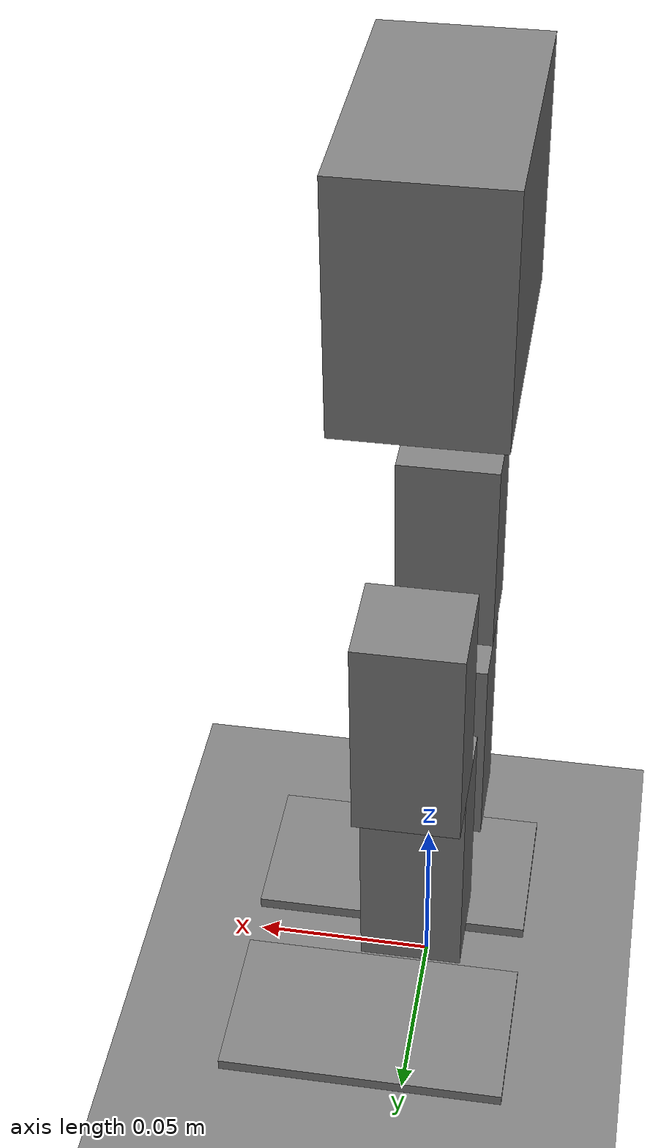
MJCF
<mujoco model="cadex-assembly">
  <compiler angle="radian" autolimits="false"/>

  <option integrator="implicitfast">
    <flag island="disable"/>
  </option>

  <size nkey="1"/>

  <worldbody>
    <body name="c_floor">
      <inertial pos="0 0 -0.002" quat="0.5 0.5 -0.5 0.5" mass="0.768" diaginertia="0.02048 0.010241 0.010241"/>
      <geom name="c_floor/collision0" size="0.2 0.2 0.05" type="plane" conaffinity="2147483647"/>
    </body>
    <body name="c_torso" pos="0 0 0.241">
      <inertial pos="0.00132326 4.52762e-06 0.00225201" quat="0.999574 0.000435019 -0.0291813 -3.19179e-05" mass="0.1356" diaginertia="0.000153369 0.000112191 7.39475e-05"/>
      <joint name="c_torso/free" type="free"/>
      <geom name="c_torso/collision0" size="0.02 0.036 0.031" type="box" conaffinity="2147483647"/>
      <body name="c_hip_l" pos="0 0.03 -0.066">
        <inertial pos="-0.00760718 0.00563305 0.0101238" quat="0.935924 0.0135927 -0.163726 0.311536" mass="0.0148157" diaginertia="2.82886e-06 2.64849e-06 1.44315e-06"/>
        <joint name="hip_roll_l" pos="0 0 0.015" axis="1 0 0" limited="true" range="-0.436332 0.436332" armature="2.5e-05" damping="0.0171887" frictionloss="0.0015"/>
        <body name="c_thigh_l" pos="0 0 -0.044">
          <inertial pos="-0.00284905 -0.00270625 0.013575" quat="0.995831 0.0165299 -0.036409 -0.0819878" mass="0.0276493" diaginertia="1.43823e-05 1.22604e-05 5.15626e-06"/>
          <joint name="hip_pitch_l" pos="0 0 0.029" axis="0 1 0" limited="true" range="-0.959931 0.698132" armature="2.5e-05" damping="0.0171887" frictionloss="0.0015"/>
          <geom name="c_thigh_l/collision0" size="0.0135 0.01225 0.029" pos="0 0.00575 0" type="box" conaffinity="2147483647"/>
          <body name="c_shin_l" pos="0 0 -0.06">
            <inertial pos="-0.00287537 0.0023632 0.013813" quat="0.99647 -0.0187264 -0.0320475 0.0752953" mass="0.0293278" diaginertia="1.65561e-05 1.43003e-05 5.47087e-06"/>
            <joint name="knee_l" pos="0 0 0.031" axis="0 1 0" limited="true" range="-0.0872665 1.65806" armature="2.5e-05" damping="0.0171887" frictionloss="0.0015"/>
            <geom name="c_shin_l/collision0" size="0.0135 0.01225 0.031" pos="0 -0.00575 0" type="box" conaffinity="2147483647"/>
            <body name="c_ankle_l" pos="0 0 -0.043">
              <inertial pos="-0.00351083 -0.00816112 0.0094974" quat="0.0507613 0.713518 0.562748 0.414283" mass="0.0139252" diaginertia="2.22528e-06 2.15682e-06 1.25039e-06"/>
              <joint name="ankle_pitch_l" pos="0 0 0.012" axis="0 1 0" limited="true" range="-0.698132 0.698132" armature="2.5e-05" damping="0.0171887" frictionloss="0.0015"/>
              <body name="c_foot_l" pos="0.012 0 -0.02">
                <inertial pos="-0.0106153 0.0023885 -0.000489322" quat="0.000715118 0.759676 -0.0811428 0.645219" mass="0.0296388" diaginertia="1.61379e-05 1.38871e-05 4.57778e-06"/>
                <joint name="ankle_roll_l" pos="-0.012 0 0.008" axis="1 0 0" limited="true" range="-0.436332 0.436332" armature="2.5e-05" damping="0.0171887" frictionloss="0.0015"/>
                <geom name="c_foot_l/collision0" size="0.04 0.022 0.00175" pos="0 0 -0.00625" type="box" conaffinity="2147483647" friction="1.2"/>
              </body>
            </body>
          </body>
        </body>
      </body>
      <body name="c_hip_r" pos="0 -0.03 -0.066">
        <inertial pos="-0.00760718 -0.00563305 0.0101238" quat="0.935924 -0.0135927 -0.163726 -0.311536" mass="0.0148157" diaginertia="2.82886e-06 2.64849e-06 1.44315e-06"/>
        <joint name="hip_roll_r" pos="0 0 0.015" axis="1 0 0" limited="true" range="-0.436332 0.436332" armature="2.5e-05" damping="0.0171887" frictionloss="0.0015"/>
        <body name="c_thigh_r" pos="0 0 -0.044">
          <inertial pos="-0.00284905 0.00270625 0.013575" quat="0.995831 -0.0165299 -0.036409 0.0819878" mass="0.0276493" diaginertia="1.43823e-05 1.22604e-05 5.15626e-06"/>
          <joint name="hip_pitch_r" pos="0 0 0.029" axis="0 1 0" limited="true" range="-0.959931 0.698132" armature="2.5e-05" damping="0.0171887" frictionloss="0.0015"/>
          <geom name="c_thigh_r/collision0" size="0.0135 0.01225 0.029" pos="0 -0.00575 0" type="box" conaffinity="2147483647"/>
          <body name="c_shin_r" pos="0 0 -0.06">
            <inertial pos="-0.00287537 -0.0023632 0.013813" quat="0.99647 0.0187264 -0.0320475 -0.0752953" mass="0.0293278" diaginertia="1.65561e-05 1.43003e-05 5.47087e-06"/>
            <joint name="knee_r" pos="0 0 0.031" axis="0 1 0" limited="true" range="-0.0872665 1.65806" armature="2.5e-05" damping="0.0171887" frictionloss="0.0015"/>
            <geom name="c_shin_r/collision0" size="0.0135 0.01225 0.031" pos="0 0.00575 0" type="box" conaffinity="2147483647"/>
            <body name="c_ankle_r" pos="0 0 -0.043">
              <inertial pos="-0.00351083 0.00816112 0.0094974" quat="0.414283 0.562748 0.713518 0.0507613" mass="0.0139252" diaginertia="2.22528e-06 2.15682e-06 1.25039e-06"/>
              <joint name="ankle_pitch_r" pos="0 0 0.012" axis="0 1 0" limited="true" range="-0.698132 0.698132" armature="2.5e-05" damping="0.0171887" frictionloss="0.0015"/>
              <body name="c_foot_r" pos="0.012 0 -0.02">
                <inertial pos="-0.0106153 -0.0023885 -0.000489322" quat="-0.000715118 0.759676 0.0811428 0.645219" mass="0.0296388" diaginertia="1.61379e-05 1.38871e-05 4.57778e-06"/>
                <joint name="ankle_roll_r" pos="-0.012 0 0.008" axis="1 0 0" limited="true" range="-0.436332 0.436332" armature="2.5e-05" damping="0.0171887" frictionloss="0.0015"/>
                <geom name="c_foot_r/collision0" size="0.04 0.022 0.00175" pos="0 0 -0.00625" type="box" conaffinity="2147483647" friction="1.2"/>
              </body>
            </body>
          </body>
        </body>
      </body>
    </body>
  </worldbody>

  <contact>
    <exclude name="c_hip_l|c_torso" body1="c_torso" body2="c_hip_l"/>
    <exclude name="c_hip_r|c_torso" body1="c_torso" body2="c_hip_r"/>
    <exclude name="c_hip_l|c_thigh_l" body1="c_hip_l" body2="c_thigh_l"/>
    <exclude name="c_shin_l|c_thigh_l" body1="c_thigh_l" body2="c_shin_l"/>
    <exclude name="c_ankle_l|c_shin_l" body1="c_shin_l" body2="c_ankle_l"/>
    <exclude name="c_ankle_l|c_foot_l" body1="c_ankle_l" body2="c_foot_l"/>
    <exclude name="c_hip_r|c_thigh_r" body1="c_hip_r" body2="c_thigh_r"/>
    <exclude name="c_shin_r|c_thigh_r" body1="c_thigh_r" body2="c_shin_r"/>
    <exclude name="c_ankle_r|c_shin_r" body1="c_shin_r" body2="c_ankle_r"/>
    <exclude name="c_ankle_r|c_foot_r" body1="c_ankle_r" body2="c_foot_r"/>
  </contact>

  <actuator>
    <general name="hip_roll_l/position" joint="hip_roll_l" ctrllimited="false" forcelimited="true" forcerange="-0.216 0.216" biastype="affine" gainprm="1.43239" biasprm="0 -1.43239 -0.0572958"/>
    <general name="hip_pitch_l/position" joint="hip_pitch_l" ctrllimited="false" forcelimited="true" forcerange="-0.216 0.216" biastype="affine" gainprm="1.43239" biasprm="0 -1.43239 -0.0572958"/>
    <general name="knee_l/position" joint="knee_l" ctrllimited="false" forcelimited="true" forcerange="-0.216 0.216" biastype="affine" gainprm="1.43239" biasprm="0 -1.43239 -0.0572958"/>
    <general name="ankle_pitch_l/position" joint="ankle_pitch_l" ctrllimited="false" forcelimited="true" forcerange="-0.216 0.216" biastype="affine" gainprm="1.43239" biasprm="0 -1.43239 -0.0572958"/>
    <general name="ankle_roll_l/position" joint="ankle_roll_l" ctrllimited="false" forcelimited="true" forcerange="-0.216 0.216" biastype="affine" gainprm="1.43239" biasprm="0 -1.43239 -0.0572958"/>
    <general name="hip_roll_r/position" joint="hip_roll_r" ctrllimited="false" forcelimited="true" forcerange="-0.216 0.216" biastype="affine" gainprm="1.43239" biasprm="0 -1.43239 -0.0572958"/>
    <general name="hip_pitch_r/position" joint="hip_pitch_r" ctrllimited="false" forcelimited="true" forcerange="-0.216 0.216" biastype="affine" gainprm="1.43239" biasprm="0 -1.43239 -0.0572958"/>
    <general name="knee_r/position" joint="knee_r" ctrllimited="false" forcelimited="true" forcerange="-0.216 0.216" biastype="affine" gainprm="1.43239" biasprm="0 -1.43239 -0.0572958"/>
    <general name="ankle_pitch_r/position" joint="ankle_pitch_r" ctrllimited="false" forcelimited="true" forcerange="-0.216 0.216" biastype="affine" gainprm="1.43239" biasprm="0 -1.43239 -0.0572958"/>
    <general name="ankle_roll_r/position" joint="ankle_roll_r" ctrllimited="false" forcelimited="true" forcerange="-0.216 0.216" biastype="affine" gainprm="1.43239" biasprm="0 -1.43239 -0.0572958"/>
  </actuator>

  <sensor>
    <jointpos joint="hip_roll_l" name="obs/0"/>
    <jointvel joint="hip_roll_l" name="obs/1"/>

    <actuatorfrc actuator="hip_roll_l/position" name="obs/2"/>
    <jointpos joint="hip_pitch_l" name="obs/3"/>
    <jointvel joint="hip_pitch_l" name="obs/4"/>

    <actuatorfrc actuator="hip_pitch_l/position" name="obs/5"/>
    <jointpos joint="knee_l" name="obs/6"/>
    <jointvel joint="knee_l" name="obs/7"/>

    <actuatorfrc actuator="knee_l/position" name="obs/8"/>
    <jointpos joint="ankle_pitch_l" name="obs/9"/>
    <jointvel joint="ankle_pitch_l" name="obs/10"/>

    <actuatorfrc actuator="ankle_pitch_l/position" name="obs/11"/>
    <jointpos joint="ankle_roll_l" name="obs/12"/>
    <jointvel joint="ankle_roll_l" name="obs/13"/>

    <actuatorfrc actuator="ankle_roll_l/position" name="obs/14"/>
    <jointpos joint="hip_roll_r" name="obs/15"/>
    <jointvel joint="hip_roll_r" name="obs/16"/>

    <actuatorfrc actuator="hip_roll_r/position" name="obs/17"/>
    <jointpos joint="hip_pitch_r" name="obs/18"/>
    <jointvel joint="hip_pitch_r" name="obs/19"/>

    <actuatorfrc actuator="hip_pitch_r/position" name="obs/20"/>
    <jointpos joint="knee_r" name="obs/21"/>
    <jointvel joint="knee_r" name="obs/22"/>

    <actuatorfrc actuator="knee_r/position" name="obs/23"/>
    <jointpos joint="ankle_pitch_r" name="obs/24"/>
    <jointvel joint="ankle_pitch_r" name="obs/25"/>

    <actuatorfrc actuator="ankle_pitch_r/position" name="obs/26"/>
    <jointpos joint="ankle_roll_r" name="obs/27"/>
    <jointvel joint="ankle_roll_r" name="obs/28"/>

    <actuatorfrc actuator="ankle_roll_r/position" name="obs/29"/>
    <framequat objtype="xbody" objname="c_torso" name="obs/30"/>
    <frameangvel objtype="xbody" objname="c_torso" name="obs/31"/>
    <subtreecom body="c_torso" name="obs/32"/>
    <subtreelinvel body="c_torso" name="obs/33"/>
    <subtreeangmom body="c_torso" name="obs/34"/>
  </sensor>

  <keyframe>
    <key name="solved" qpos="0 0 0.241 1 0 0 0 0 0 0 0 0 0 0 0 0 0"/>
  </keyframe>
</mujoco>
